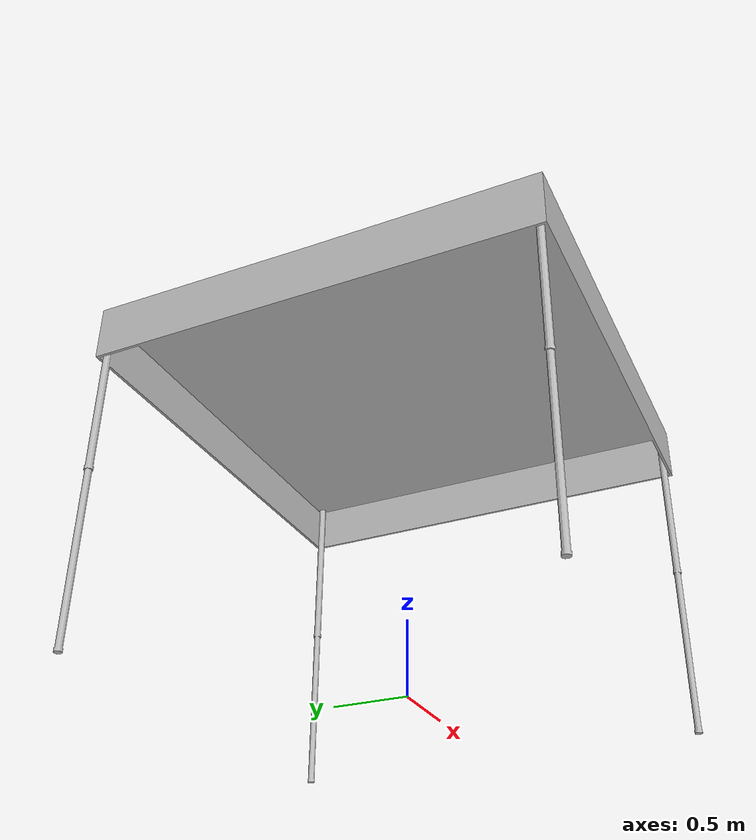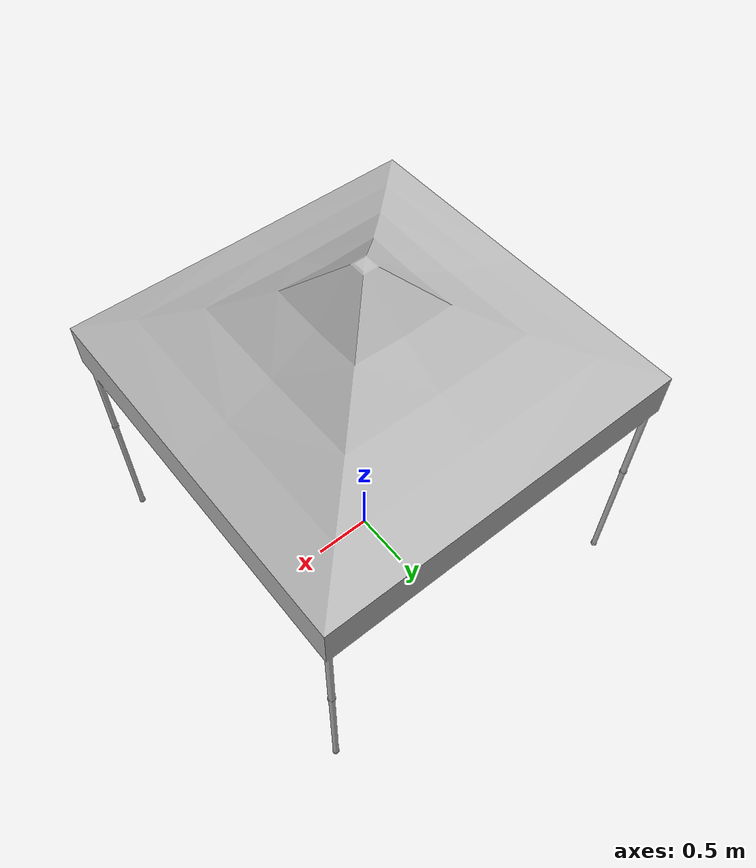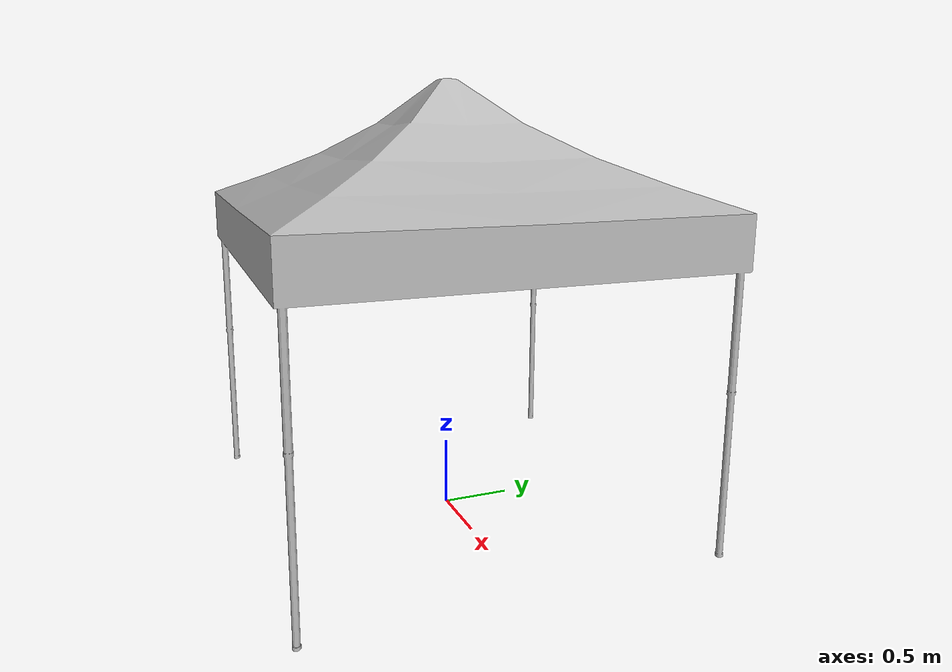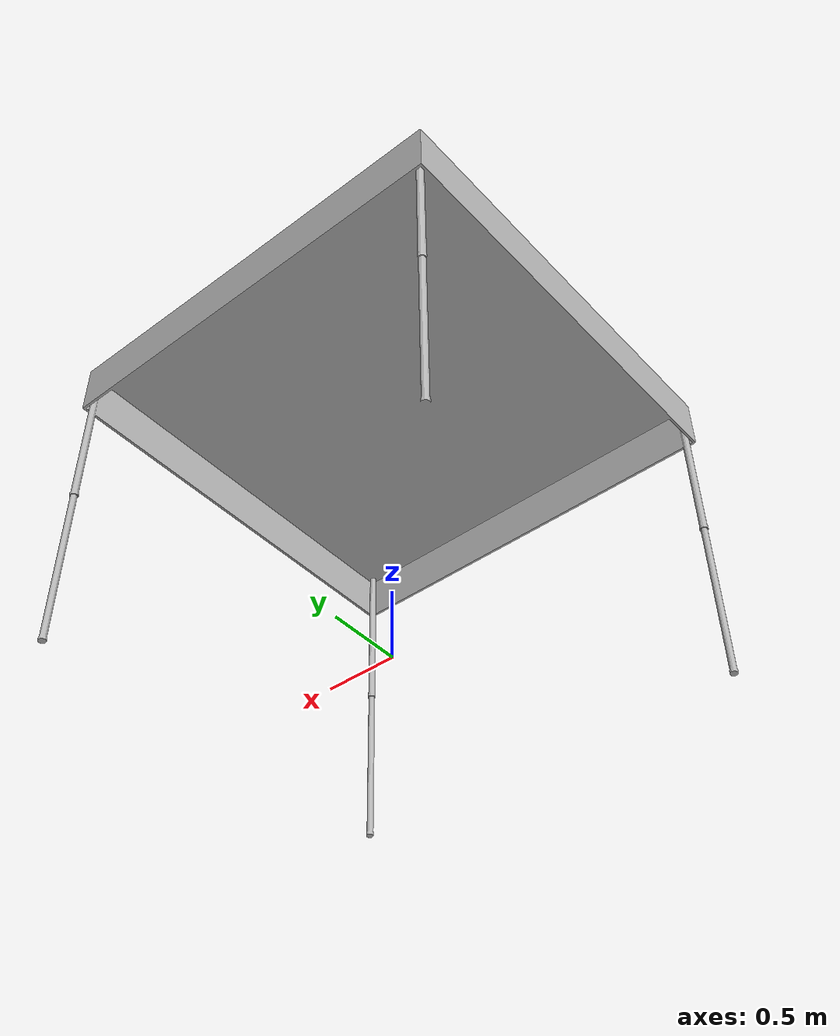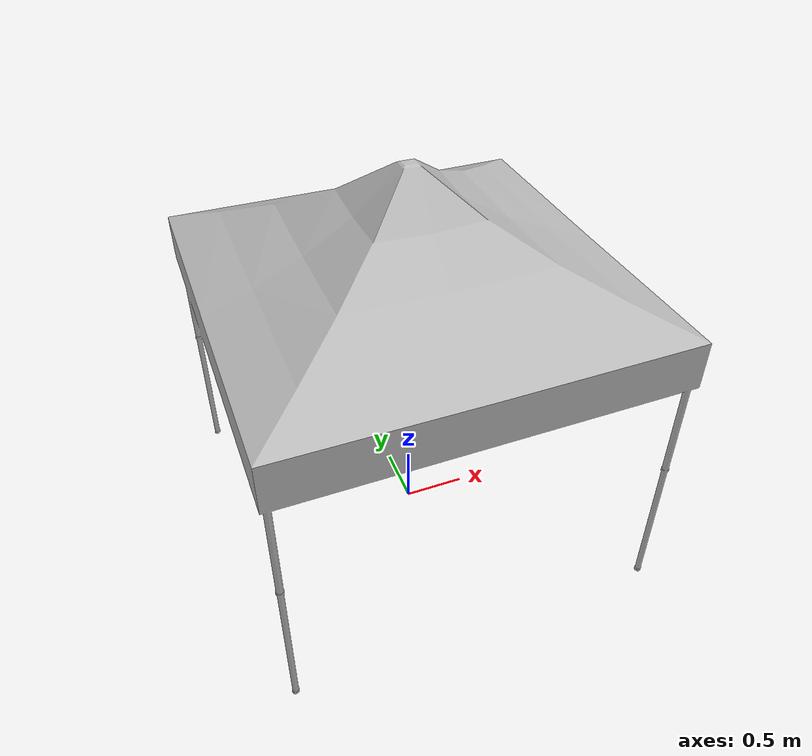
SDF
<?xml version="1.0"?>
<sdf version="1.6">
  <model name="tent">
    <static>true</static>
    <link name="base_link">
      <visual name="visual">
        <geometry>
           <mesh>
            <uri>model://tent/mesh/tent.dae</uri>
          </mesh>
        </geometry>
      </visual>
      <collision name="collision">
        <pose>0 0 1.5 0 0 0</pose>
        <geometry>
          <box>
            <size>3.0 3.0 3.0</size>
          </box>
        </geometry>
      </collision>
    </link>
  </model>
</sdf>
